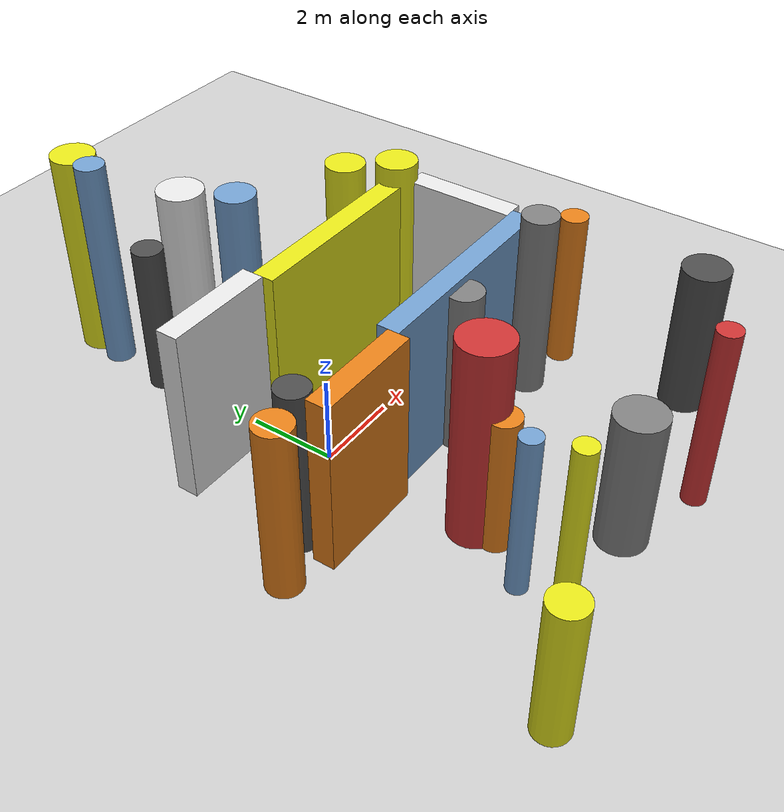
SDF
<?xml version='1.0'?>
<sdf version='1.6'>
  <world name='routeA_rl_v1__dense_recovery__rl_test__cul_de_sac_trap__000040'>
    <!-- Sun light -->
    <light name='sun' type='directional'>
      <cast_shadows>1</cast_shadows>
      <pose>0 0 10 0 0 0</pose>
      <diffuse>0.8 0.8 0.8 1</diffuse>
      <specular>0.2 0.2 0.2 1</specular>
      <attenuation>
        <range>1000</range>
        <constant>0.9</constant>
        <linear>0.01</linear>
        <quadratic>0.001</quadratic>
      </attenuation>
      <direction>-0.5 0.1 -0.9</direction>
    </light>

    <!-- Ground plane -->
    <model name='ground_plane'>
      <static>1</static>
      <link name='link'>
        <collision name='collision'>
          <geometry>
            <plane>
              <normal>0 0 1</normal>
              <size>100 100</size>
            </plane>
          </geometry>
          <surface>
            <contact>
              <collide_bitmask>65535</collide_bitmask>
              <ode/>
            </contact>
            <friction>
              <ode>
                <mu>100</mu>
                <mu2>50</mu2>
              </ode>
              <torsional><ode/></torsional>
            </friction>
            <bounce/>
          </surface>
          <max_contacts>10</max_contacts>
        </collision>
        <visual name='visual'>
          <cast_shadows>0</cast_shadows>
          <geometry>
            <plane>
              <normal>0 0 1</normal>
              <size>100 100</size>
            </plane>
          </geometry>
          <material>
            <script>
              <uri>file://media/materials/scripts/gazebo.material</uri>
              <n>Gazebo/Grey</n>
            </script>
          </material>
        </visual>
      </link>
    </model>

    <!-- Environment -->
    <magnetic_field>6e-06 2.3e-05 -4.2e-05</magnetic_field>
    <atmosphere type='adiabatic'/>
    <physics name='default_physics' default='0' type='ode'>
      <gravity>0 0 -9.8</gravity>
      <max_step_size>0.004</max_step_size>
      <real_time_factor>1</real_time_factor>
      <real_time_update_rate>250</real_time_update_rate>
    </physics>
    <scene>
      <ambient>0.4 0.4 0.4 1</ambient>
      <background>0.7 0.7 0.7 1</background>
      <shadows>1</shadows>
    </scene>
    <wind/>
    <spherical_coordinates>
      <surface_model>EARTH_WGS84</surface_model>
      <latitude_deg>0</latitude_deg>
      <longitude_deg>0</longitude_deg>
      <elevation>0</elevation>
      <heading_deg>0</heading_deg>
    </spherical_coordinates>

    <!-- ============ OBSTACLES (25) ============ -->
    <model name='trap_side_l'>
      <static>1</static>
      <link name='link'>
        <visual name='visual'>
          <geometry>
            <box>
              <size>5.0000 0.5000 4.0000</size>
            </box>
          </geometry>
          <material>
            <script>
              <n>Gazebo/Blue</n>
              <uri>file://media/materials/scripts/gazebo.material</uri>
            </script>
            <ambient>0.447 0.624 0.812 1</ambient>
          </material>
        </visual>
        <collision name='collision'>
          <geometry>
            <box>
              <size>5.0000 0.5000 4.0000</size>
            </box>
          </geometry>
          <max_contacts>10</max_contacts>
          <surface>
            <contact><ode/></contact>
            <bounce/>
            <friction>
              <ode><mu>1</mu><mu2>1</mu2></ode>
              <torsional><ode/></torsional>
            </friction>
          </surface>
        </collision>
      </link>
      <pose>2.5000 -1.5000 2.0000 0 0 0.0000</pose>
    </model>

    <model name='trap_side_r'>
      <static>1</static>
      <link name='link'>
        <visual name='visual'>
          <geometry>
            <box>
              <size>5.0000 0.5000 4.0000</size>
            </box>
          </geometry>
          <material>
            <script>
              <n>Gazebo/Yellow</n>
              <uri>file://media/materials/scripts/gazebo.material</uri>
            </script>
            <ambient>0.9 0.9 0.1 1</ambient>
          </material>
        </visual>
        <collision name='collision'>
          <geometry>
            <box>
              <size>5.0000 0.5000 4.0000</size>
            </box>
          </geometry>
          <max_contacts>10</max_contacts>
          <surface>
            <contact><ode/></contact>
            <bounce/>
            <friction>
              <ode><mu>1</mu><mu2>1</mu2></ode>
              <torsional><ode/></torsional>
            </friction>
          </surface>
        </collision>
      </link>
      <pose>2.5000 1.5000 2.0000 0 0 0.0000</pose>
    </model>

    <model name='trap_back'>
      <static>1</static>
      <link name='link'>
        <visual name='visual'>
          <geometry>
            <box>
              <size>0.5000 2.5000 4.0000</size>
            </box>
          </geometry>
          <material>
            <script>
              <n>Gazebo/White</n>
              <uri>file://media/materials/scripts/gazebo.material</uri>
            </script>
            <ambient>0.9 0.9 0.9 1</ambient>
          </material>
        </visual>
        <collision name='collision'>
          <geometry>
            <box>
              <size>0.5000 2.5000 4.0000</size>
            </box>
          </geometry>
          <max_contacts>10</max_contacts>
          <surface>
            <contact><ode/></contact>
            <bounce/>
            <friction>
              <ode><mu>1</mu><mu2>1</mu2></ode>
              <torsional><ode/></torsional>
            </friction>
          </surface>
        </collision>
      </link>
      <pose>5.0000 0.0000 2.0000 0 0 0.0000</pose>
    </model>

    <model name='trap_funnel_l'>
      <static>1</static>
      <link name='link'>
        <visual name='visual'>
          <geometry>
            <box>
              <size>2.5000 0.5000 4.0000</size>
            </box>
          </geometry>
          <material>
            <script>
              <n>Gazebo/Orange</n>
              <uri>file://media/materials/scripts/gazebo.material</uri>
            </script>
            <ambient>0.9 0.5 0.1 1</ambient>
          </material>
        </visual>
        <collision name='collision'>
          <geometry>
            <box>
              <size>2.5000 0.5000 4.0000</size>
            </box>
          </geometry>
          <max_contacts>10</max_contacts>
          <surface>
            <contact><ode/></contact>
            <bounce/>
            <friction>
              <ode><mu>1</mu><mu2>1</mu2></ode>
              <torsional><ode/></torsional>
            </friction>
          </surface>
        </collision>
      </link>
      <pose>-1.2500 -1.7500 2.0000 0 0 0.0000</pose>
    </model>

    <model name='trap_funnel_r'>
      <static>1</static>
      <link name='link'>
        <visual name='visual'>
          <geometry>
            <box>
              <size>2.5000 0.5000 4.0000</size>
            </box>
          </geometry>
          <material>
            <script>
              <n>Gazebo/White</n>
              <uri>file://media/materials/scripts/gazebo.material</uri>
            </script>
            <ambient>0.9 0.9 0.9 1</ambient>
          </material>
        </visual>
        <collision name='collision'>
          <geometry>
            <box>
              <size>2.5000 0.5000 4.0000</size>
            </box>
          </geometry>
          <max_contacts>10</max_contacts>
          <surface>
            <contact><ode/></contact>
            <bounce/>
            <friction>
              <ode><mu>1</mu><mu2>1</mu2></ode>
              <torsional><ode/></torsional>
            </friction>
          </surface>
        </collision>
      </link>
      <pose>-1.2500 1.7500 2.0000 0 0 0.0000</pose>
    </model>

    <model name='trap_scatter_0'>
      <static>1</static>
      <link name='link'>
        <visual name='visual'>
          <geometry>
            <cylinder>
              <radius>0.5489</radius>
              <length>3.1768</length>
            </cylinder>
          </geometry>
          <material>
            <script>
              <n>Gazebo/Grey</n>
              <uri>file://media/materials/scripts/gazebo.material</uri>
            </script>
            <ambient>0.5 0.5 0.5 1</ambient>
          </material>
        </visual>
        <collision name='collision'>
          <geometry>
            <cylinder>
              <radius>0.5489</radius>
              <length>3.1768</length>
            </cylinder>
          </geometry>
          <max_contacts>10</max_contacts>
          <surface>
            <contact><ode/></contact>
            <bounce/>
            <friction>
              <ode><mu>1</mu><mu2>1</mu2></ode>
              <torsional><ode/></torsional>
            </friction>
          </surface>
        </collision>
      </link>
      <pose>1.4423 -6.0984 1.5884 0 0 0.0000</pose>
    </model>

    <model name='trap_scatter_1'>
      <static>1</static>
      <link name='link'>
        <visual name='visual'>
          <geometry>
            <cylinder>
              <radius>0.3441</radius>
              <length>3.5265</length>
            </cylinder>
          </geometry>
          <material>
            <script>
              <n>Gazebo/DarkGrey</n>
              <uri>file://media/materials/scripts/gazebo.material</uri>
            </script>
            <ambient>0.3 0.3 0.3 1</ambient>
          </material>
        </visual>
        <collision name='collision'>
          <geometry>
            <cylinder>
              <radius>0.3441</radius>
              <length>3.5265</length>
            </cylinder>
          </geometry>
          <max_contacts>10</max_contacts>
          <surface>
            <contact><ode/></contact>
            <bounce/>
            <friction>
              <ode><mu>1</mu><mu2>1</mu2></ode>
              <torsional><ode/></torsional>
            </friction>
          </surface>
        </collision>
      </link>
      <pose>-0.0395 4.6518 1.7632 0 0 0.0000</pose>
    </model>

    <model name='trap_scatter_2'>
      <static>1</static>
      <link name='link'>
        <visual name='visual'>
          <geometry>
            <cylinder>
              <radius>0.4639</radius>
              <length>4.1128</length>
            </cylinder>
          </geometry>
          <material>
            <script>
              <n>Gazebo/Blue</n>
              <uri>file://media/materials/scripts/gazebo.material</uri>
            </script>
            <ambient>0.447 0.624 0.812 1</ambient>
          </material>
        </visual>
        <collision name='collision'>
          <geometry>
            <cylinder>
              <radius>0.4639</radius>
              <length>4.1128</length>
            </cylinder>
          </geometry>
          <max_contacts>10</max_contacts>
          <surface>
            <contact><ode/></contact>
            <bounce/>
            <friction>
              <ode><mu>1</mu><mu2>1</mu2></ode>
              <torsional><ode/></torsional>
            </friction>
          </surface>
        </collision>
      </link>
      <pose>2.0326 3.9304 2.0564 0 0 0.0000</pose>
    </model>

    <model name='trap_scatter_3'>
      <static>1</static>
      <link name='link'>
        <visual name='visual'>
          <geometry>
            <cylinder>
              <radius>0.2417</radius>
              <length>4.1324</length>
            </cylinder>
          </geometry>
          <material>
            <script>
              <n>Gazebo/Yellow</n>
              <uri>file://media/materials/scripts/gazebo.material</uri>
            </script>
            <ambient>0.9 0.9 0.1 1</ambient>
          </material>
        </visual>
        <collision name='collision'>
          <geometry>
            <cylinder>
              <radius>0.2417</radius>
              <length>4.1324</length>
            </cylinder>
          </geometry>
          <max_contacts>10</max_contacts>
          <surface>
            <contact><ode/></contact>
            <bounce/>
            <friction>
              <ode><mu>1</mu><mu2>1</mu2></ode>
              <torsional><ode/></torsional>
            </friction>
          </surface>
        </collision>
      </link>
      <pose>-0.9054 -6.0987 2.0662 0 0 0.0000</pose>
    </model>

    <model name='trap_scatter_4'>
      <static>1</static>
      <link name='link'>
        <visual name='visual'>
          <geometry>
            <cylinder>
              <radius>0.4859</radius>
              <length>3.4774</length>
            </cylinder>
          </geometry>
          <material>
            <script>
              <n>Gazebo/Yellow</n>
              <uri>file://media/materials/scripts/gazebo.material</uri>
            </script>
            <ambient>0.9 0.9 0.1 1</ambient>
          </material>
        </visual>
        <collision name='collision'>
          <geometry>
            <cylinder>
              <radius>0.4859</radius>
              <length>3.4774</length>
            </cylinder>
          </geometry>
          <max_contacts>10</max_contacts>
          <surface>
            <contact><ode/></contact>
            <bounce/>
            <friction>
              <ode><mu>1</mu><mu2>1</mu2></ode>
              <torsional><ode/></torsional>
            </friction>
          </surface>
        </collision>
      </link>
      <pose>5.3906 3.4897 1.7387 0 0 0.0000</pose>
    </model>

    <model name='trap_scatter_7'>
      <static>1</static>
      <link name='link'>
        <visual name='visual'>
          <geometry>
            <cylinder>
              <radius>0.4036</radius>
              <length>3.8339</length>
            </cylinder>
          </geometry>
          <material>
            <script>
              <n>Gazebo/Grey</n>
              <uri>file://media/materials/scripts/gazebo.material</uri>
            </script>
            <ambient>0.5 0.5 0.5 1</ambient>
          </material>
        </visual>
        <collision name='collision'>
          <geometry>
            <cylinder>
              <radius>0.4036</radius>
              <length>3.8339</length>
            </cylinder>
          </geometry>
          <max_contacts>10</max_contacts>
          <surface>
            <contact><ode/></contact>
            <bounce/>
            <friction>
              <ode><mu>1</mu><mu2>1</mu2></ode>
              <torsional><ode/></torsional>
            </friction>
          </surface>
        </collision>
      </link>
      <pose>2.1045 -1.8880 1.9169 0 0 0.0000</pose>
    </model>

    <model name='trap_scatter_8'>
      <static>1</static>
      <link name='link'>
        <visual name='visual'>
          <geometry>
            <cylinder>
              <radius>0.4970</radius>
              <length>4.8516</length>
            </cylinder>
          </geometry>
          <material>
            <script>
              <n>Gazebo/Yellow</n>
              <uri>file://media/materials/scripts/gazebo.material</uri>
            </script>
            <ambient>0.9 0.9 0.1 1</ambient>
          </material>
        </visual>
        <collision name='collision'>
          <geometry>
            <cylinder>
              <radius>0.4970</radius>
              <length>4.8516</length>
            </cylinder>
          </geometry>
          <max_contacts>10</max_contacts>
          <surface>
            <contact><ode/></contact>
            <bounce/>
            <friction>
              <ode><mu>1</mu><mu2>1</mu2></ode>
              <torsional><ode/></torsional>
            </friction>
          </surface>
        </collision>
      </link>
      <pose>0.3415 6.9658 2.4258 0 0 0.0000</pose>
    </model>

    <model name='trap_scatter_9'>
      <static>1</static>
      <link name='link'>
        <visual name='visual'>
          <geometry>
            <cylinder>
              <radius>0.2340</radius>
              <length>3.7772</length>
            </cylinder>
          </geometry>
          <material>
            <script>
              <n>Gazebo/Blue</n>
              <uri>file://media/materials/scripts/gazebo.material</uri>
            </script>
            <ambient>0.447 0.624 0.812 1</ambient>
          </material>
        </visual>
        <collision name='collision'>
          <geometry>
            <cylinder>
              <radius>0.2340</radius>
              <length>3.7772</length>
            </cylinder>
          </geometry>
          <max_contacts>10</max_contacts>
          <surface>
            <contact><ode/></contact>
            <bounce/>
            <friction>
              <ode><mu>1</mu><mu2>1</mu2></ode>
              <torsional><ode/></torsional>
            </friction>
          </surface>
        </collision>
      </link>
      <pose>-0.8524 -5.0676 1.8886 0 0 0.0000</pose>
    </model>

    <model name='trap_scatter_12'>
      <static>1</static>
      <link name='link'>
        <visual name='visual'>
          <geometry>
            <cylinder>
              <radius>0.3072</radius>
              <length>3.7173</length>
            </cylinder>
          </geometry>
          <material>
            <script>
              <n>Gazebo/Orange</n>
              <uri>file://media/materials/scripts/gazebo.material</uri>
            </script>
            <ambient>0.9 0.5 0.1 1</ambient>
          </material>
        </visual>
        <collision name='collision'>
          <geometry>
            <cylinder>
              <radius>0.3072</radius>
              <length>3.7173</length>
            </cylinder>
          </geometry>
          <max_contacts>10</max_contacts>
          <surface>
            <contact><ode/></contact>
            <bounce/>
            <friction>
              <ode><mu>1</mu><mu2>1</mu2></ode>
              <torsional><ode/></torsional>
            </friction>
          </surface>
        </collision>
      </link>
      <pose>6.0016 -2.2286 1.8587 0 0 0.0000</pose>
    </model>

    <model name='trap_scatter_13'>
      <static>1</static>
      <link name='link'>
        <visual name='visual'>
          <geometry>
            <cylinder>
              <radius>0.4020</radius>
              <length>3.9999</length>
            </cylinder>
          </geometry>
          <material>
            <script>
              <n>Gazebo/Orange</n>
              <uri>file://media/materials/scripts/gazebo.material</uri>
            </script>
            <ambient>0.9 0.5 0.1 1</ambient>
          </material>
        </visual>
        <collision name='collision'>
          <geometry>
            <cylinder>
              <radius>0.4020</radius>
              <length>3.9999</length>
            </cylinder>
          </geometry>
          <max_contacts>10</max_contacts>
          <surface>
            <contact><ode/></contact>
            <bounce/>
            <friction>
              <ode><mu>1</mu><mu2>1</mu2></ode>
              <torsional><ode/></torsional>
            </friction>
          </surface>
        </collision>
      </link>
      <pose>-3.3018 -1.4391 2.0000 0 0 0.0000</pose>
    </model>

    <model name='trap_scatter_14'>
      <static>1</static>
      <link name='link'>
        <visual name='visual'>
          <geometry>
            <cylinder>
              <radius>0.4731</radius>
              <length>4.4335</length>
            </cylinder>
          </geometry>
          <material>
            <script>
              <n>Gazebo/Yellow</n>
              <uri>file://media/materials/scripts/gazebo.material</uri>
            </script>
            <ambient>0.9 0.9 0.1 1</ambient>
          </material>
        </visual>
        <collision name='collision'>
          <geometry>
            <cylinder>
              <radius>0.4731</radius>
              <length>4.4335</length>
            </cylinder>
          </geometry>
          <max_contacts>10</max_contacts>
          <surface>
            <contact><ode/></contact>
            <bounce/>
            <friction>
              <ode><mu>1</mu><mu2>1</mu2></ode>
              <torsional><ode/></torsional>
            </friction>
          </surface>
        </collision>
      </link>
      <pose>4.7549 1.5850 2.2168 0 0 0.0000</pose>
    </model>

    <model name='trap_scatter_15'>
      <static>1</static>
      <link name='link'>
        <visual name='visual'>
          <geometry>
            <cylinder>
              <radius>0.4063</radius>
              <length>4.3798</length>
            </cylinder>
          </geometry>
          <material>
            <script>
              <n>Gazebo/Grey</n>
              <uri>file://media/materials/scripts/gazebo.material</uri>
            </script>
            <ambient>0.5 0.5 0.5 1</ambient>
          </material>
        </visual>
        <collision name='collision'>
          <geometry>
            <cylinder>
              <radius>0.4063</radius>
              <length>4.3798</length>
            </cylinder>
          </geometry>
          <max_contacts>10</max_contacts>
          <surface>
            <contact><ode/></contact>
            <bounce/>
            <friction>
              <ode><mu>1</mu><mu2>1</mu2></ode>
              <torsional><ode/></torsional>
            </friction>
          </surface>
        </collision>
      </link>
      <pose>4.6243 -2.1082 2.1899 0 0 0.0000</pose>
    </model>

    <model name='trap_scatter_16'>
      <static>1</static>
      <link name='link'>
        <visual name='visual'>
          <geometry>
            <cylinder>
              <radius>0.3345</radius>
              <length>4.9693</length>
            </cylinder>
          </geometry>
          <material>
            <script>
              <n>Gazebo/Blue</n>
              <uri>file://media/materials/scripts/gazebo.material</uri>
            </script>
            <ambient>0.447 0.624 0.812 1</ambient>
          </material>
        </visual>
        <collision name='collision'>
          <geometry>
            <cylinder>
              <radius>0.3345</radius>
              <length>4.9693</length>
            </cylinder>
          </geometry>
          <max_contacts>10</max_contacts>
          <surface>
            <contact><ode/></contact>
            <bounce/>
            <friction>
              <ode><mu>1</mu><mu2>1</mu2></ode>
              <torsional><ode/></torsional>
            </friction>
          </surface>
        </collision>
      </link>
      <pose>0.0930 6.1877 2.4846 0 0 0.0000</pose>
    </model>

    <model name='trap_scatter_17'>
      <static>1</static>
      <link name='link'>
        <visual name='visual'>
          <geometry>
            <cylinder>
              <radius>0.3491</radius>
              <length>3.2014</length>
            </cylinder>
          </geometry>
          <material>
            <script>
              <n>Gazebo/Orange</n>
              <uri>file://media/materials/scripts/gazebo.material</uri>
            </script>
            <ambient>0.9 0.5 0.1 1</ambient>
          </material>
        </visual>
        <collision name='collision'>
          <geometry>
            <cylinder>
              <radius>0.3491</radius>
              <length>3.2014</length>
            </cylinder>
          </geometry>
          <max_contacts>10</max_contacts>
          <surface>
            <contact><ode/></contact>
            <bounce/>
            <friction>
              <ode><mu>1</mu><mu2>1</mu2></ode>
              <torsional><ode/></torsional>
            </friction>
          </surface>
        </collision>
      </link>
      <pose>-0.0556 -4.1170 1.6007 0 0 0.0000</pose>
    </model>

    <model name='trap_scatter_18'>
      <static>1</static>
      <link name='link'>
        <visual name='visual'>
          <geometry>
            <cylinder>
              <radius>0.5780</radius>
              <length>4.7258</length>
            </cylinder>
          </geometry>
          <material>
            <script>
              <n>Gazebo/Red</n>
              <uri>file://media/materials/scripts/gazebo.material</uri>
            </script>
            <ambient>0.8 0.2 0.2 1</ambient>
          </material>
        </visual>
        <collision name='collision'>
          <geometry>
            <cylinder>
              <radius>0.5780</radius>
              <length>4.7258</length>
            </cylinder>
          </geometry>
          <max_contacts>10</max_contacts>
          <surface>
            <contact><ode/></contact>
            <bounce/>
            <friction>
              <ode><mu>1</mu><mu2>1</mu2></ode>
              <torsional><ode/></torsional>
            </friction>
          </surface>
        </collision>
      </link>
      <pose>-0.0128 -3.6061 2.3629 0 0 0.0000</pose>
    </model>

    <model name='trap_scatter_19'>
      <static>1</static>
      <link name='link'>
        <visual name='visual'>
          <geometry>
            <cylinder>
              <radius>0.5299</radius>
              <length>3.4742</length>
            </cylinder>
          </geometry>
          <material>
            <script>
              <n>Gazebo/DarkGrey</n>
              <uri>file://media/materials/scripts/gazebo.material</uri>
            </script>
            <ambient>0.3 0.3 0.3 1</ambient>
          </material>
        </visual>
        <collision name='collision'>
          <geometry>
            <cylinder>
              <radius>0.5299</radius>
              <length>3.4742</length>
            </cylinder>
          </geometry>
          <max_contacts>10</max_contacts>
          <surface>
            <contact><ode/></contact>
            <bounce/>
            <friction>
              <ode><mu>1</mu><mu2>1</mu2></ode>
              <torsional><ode/></torsional>
            </friction>
          </surface>
        </collision>
      </link>
      <pose>6.1185 -5.2659 1.7371 0 0 0.0000</pose>
    </model>

    <model name='trap_scatter_20'>
      <static>1</static>
      <link name='link'>
        <visual name='visual'>
          <geometry>
            <cylinder>
              <radius>0.3892</radius>
              <length>3.2229</length>
            </cylinder>
          </geometry>
          <material>
            <script>
              <n>Gazebo/Yellow</n>
              <uri>file://media/materials/scripts/gazebo.material</uri>
            </script>
            <ambient>0.9 0.9 0.1 1</ambient>
          </material>
        </visual>
        <collision name='collision'>
          <geometry>
            <cylinder>
              <radius>0.3892</radius>
              <length>3.2229</length>
            </cylinder>
          </geometry>
          <max_contacts>10</max_contacts>
          <surface>
            <contact><ode/></contact>
            <bounce/>
            <friction>
              <ode><mu>1</mu><mu2>1</mu2></ode>
              <torsional><ode/></torsional>
            </friction>
          </surface>
        </collision>
      </link>
      <pose>-3.2555 -7.1451 1.6114 0 0 0.0000</pose>
    </model>

    <model name='trap_scatter_21'>
      <static>1</static>
      <link name='link'>
        <visual name='visual'>
          <geometry>
            <cylinder>
              <radius>0.3676</radius>
              <length>3.8652</length>
            </cylinder>
          </geometry>
          <material>
            <script>
              <n>Gazebo/DarkGrey</n>
              <uri>file://media/materials/scripts/gazebo.material</uri>
            </script>
            <ambient>0.3 0.3 0.3 1</ambient>
          </material>
        </visual>
        <collision name='collision'>
          <geometry>
            <cylinder>
              <radius>0.3676</radius>
              <length>3.8652</length>
            </cylinder>
          </geometry>
          <max_contacts>10</max_contacts>
          <surface>
            <contact><ode/></contact>
            <bounce/>
            <friction>
              <ode><mu>1</mu><mu2>1</mu2></ode>
              <torsional><ode/></torsional>
            </friction>
          </surface>
        </collision>
      </link>
      <pose>-2.2267 -0.9943 1.9326 0 0 0.0000</pose>
    </model>

    <model name='trap_scatter_23'>
      <static>1</static>
      <link name='link'>
        <visual name='visual'>
          <geometry>
            <cylinder>
              <radius>0.5368</radius>
              <length>4.0633</length>
            </cylinder>
          </geometry>
          <material>
            <script>
              <n>Gazebo/White</n>
              <uri>file://media/materials/scripts/gazebo.material</uri>
            </script>
            <ambient>0.9 0.9 0.9 1</ambient>
          </material>
        </visual>
        <collision name='collision'>
          <geometry>
            <cylinder>
              <radius>0.5368</radius>
              <length>4.0633</length>
            </cylinder>
          </geometry>
          <max_contacts>10</max_contacts>
          <surface>
            <contact><ode/></contact>
            <bounce/>
            <friction>
              <ode><mu>1</mu><mu2>1</mu2></ode>
              <torsional><ode/></torsional>
            </friction>
          </surface>
        </collision>
      </link>
      <pose>1.5272 5.0794 2.0316 0 0 0.0000</pose>
    </model>

    <model name='trap_scatter_24'>
      <static>1</static>
      <link name='link'>
        <visual name='visual'>
          <geometry>
            <cylinder>
              <radius>0.2688</radius>
              <length>4.2465</length>
            </cylinder>
          </geometry>
          <material>
            <script>
              <n>Gazebo/Red</n>
              <uri>file://media/materials/scripts/gazebo.material</uri>
            </script>
            <ambient>0.8 0.2 0.2 1</ambient>
          </material>
        </visual>
        <collision name='collision'>
          <geometry>
            <cylinder>
              <radius>0.2688</radius>
              <length>4.2465</length>
            </cylinder>
          </geometry>
          <max_contacts>10</max_contacts>
          <surface>
            <contact><ode/></contact>
            <bounce/>
            <friction>
              <ode><mu>1</mu><mu2>1</mu2></ode>
              <torsional><ode/></torsional>
            </friction>
          </surface>
        </collision>
      </link>
      <pose>3.2976 -6.8096 2.1232 0 0 0.0000</pose>
    </model>

    <!-- GUI camera -->
    <gui fullscreen='0'>
      <camera name='user_camera'>
        <pose>-15 0 18 0 0.85 0.15</pose>
        <view_controller>orbit</view_controller>
        <projection_type>perspective</projection_type>
      </camera>
    </gui>
  </world>
</sdf>
